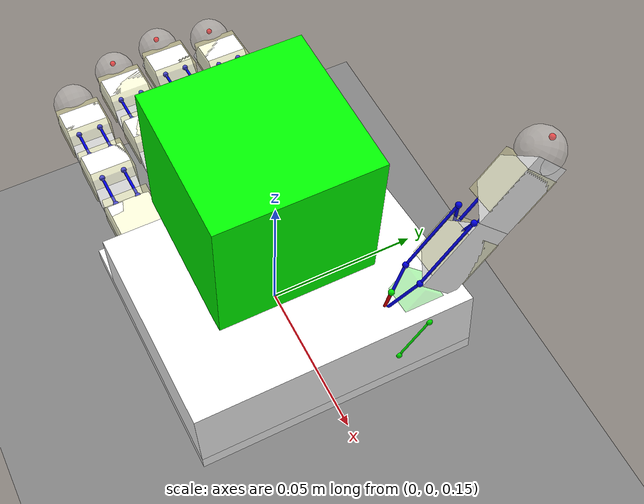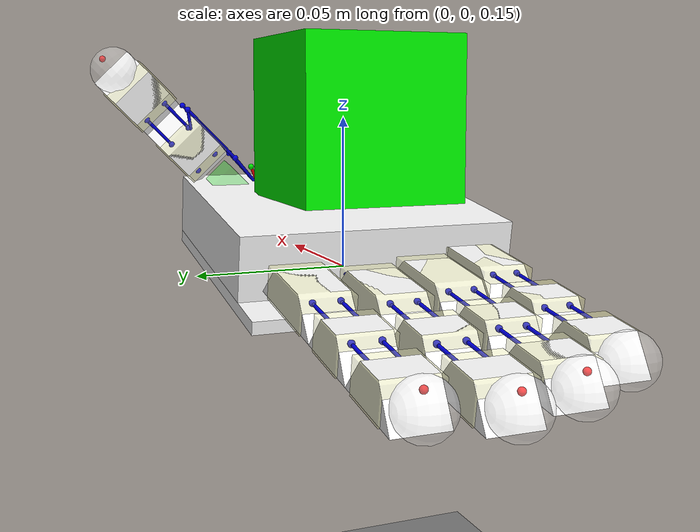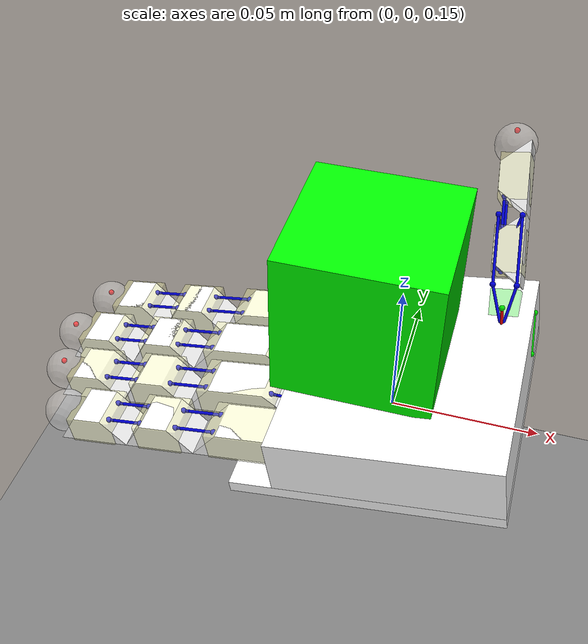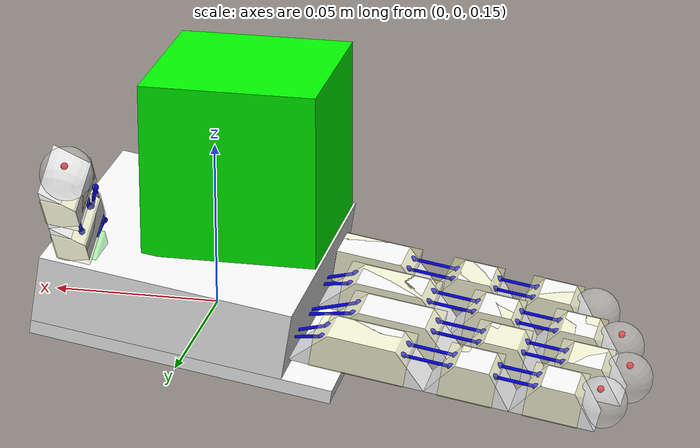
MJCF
<?xml version="1.0" ?>
<!-- Reorient手模型, 5x5 sphere tac sensors -->
<mujoco model="hand">
    <compiler angle="radian"/>
    <option integrator="implicitfast" timestep="0.01"/>
    <option>
        <flag filterparent="disable"/>
    </option>
    <option gravity="0 0 -9.81"/>
    <keyframe>
        <key name="home"
            qpos="0 0 0 0 0 0 0 0 0 0 0 0 0 0 0 0 0 0 0 0 0 0 0 0 0 0"
            qvel="0 0 0 0 0 0 0 0 0 0 0 0 0 0 0 0 0 0 0 0 0 0 0 0 0"
            ctrl="0 0 0 0 0 0 0 0 0 0 0 0"
        />
        <!-- qpos 32 qvel 31 ctrl 18 -->
    </keyframe>
    <default>
        <geom solref="0.001 1" solimp="0.99 0.999 0.0001"/>
        <default class="cube">
            <geom friction=".3 0.05" contype="2" conaffinity="1" condim="3"/>
        </default>
        <default class="hand">
            <geom contype="1" conaffinity="2" type="mesh" density="200" friction="0.7 0.05 0.0002" solref="0.02 1.5" solimp="0.9 0.99 0.001" condim="3" rgba="0 0 1 0"/>
        </default>
        <default class="visual">
            <geom contype="0" conaffinity="0" group="2" density="0"/>
        </default>
    </default>
    <asset>
        <mesh name="thumb_base_link" vertex="0.0 0.0 -0.0075 0.04 0.0 -0.0075 0.03 0.01 -0.0075 0.01 0.01 -0.0075 0.0 0.0 0.0075 0.04 0.0 0.0075 0.03 0.01 0.0075 0.01 0.01 0.0075" normal="-0.7734590803390136 -0.3203772410170408 -0.5469181606780271 0.7734590803390136 -0.3203772410170408 -0.5469181606780271 0.2971085791188998 0.7172835612062476 -0.6302624731310217 -0.2971085791188997 0.7172835612062475 -0.6302624731310217 -0.7734590803390136 -0.32037724101704074 0.5469181606780271 0.7734590803390138 -0.32037724101704057 0.5469181606780271 0.29710857911889976 0.7172835612062477 0.6302624731310216 -0.29710857911889976 0.7172835612062476 0.6302624731310217" face="1 0 3 3 2 1 7 4 5 5 6 7 5 4 1 1 4 0 6 5 2 2 5 1 4 7 0 0 7 3 7 6 3 3 6 2"/>
        <mesh name="thumb_link_1" vertex="0.0 0.0 -0.0075 0.04 0.0 -0.0075 0.03 0.01 -0.0075 0.01 0.01 -0.0075 0.0 0.0 0.0075 0.04 0.0 0.0075 0.03 0.01 0.0075 0.01 0.01 0.0075" normal="-0.7734590803390136 -0.3203772410170408 -0.5469181606780271 0.7734590803390136 -0.3203772410170408 -0.5469181606780271 0.2971085791188998 0.7172835612062476 -0.6302624731310217 -0.2971085791188997 0.7172835612062475 -0.6302624731310217 -0.7734590803390136 -0.32037724101704074 0.5469181606780271 0.7734590803390138 -0.32037724101704057 0.5469181606780271 0.29710857911889976 0.7172835612062477 0.6302624731310216 -0.29710857911889976 0.7172835612062476 0.6302624731310217" face="1 0 3 3 2 1 7 4 5 5 6 7 5 4 1 1 4 0 6 5 2 2 5 1 4 7 0 0 7 3 7 6 3 3 6 2"/>
        <mesh name="thumb_link_2" vertex="0.0 0.0 -0.0075 0.025 0.0 -0.0075 0.0175 0.01 -0.0075 0.007500000000000001 0.01 -0.0075 0.0 0.0 0.0075 0.025 0.0 0.0075 0.0175 0.01 0.0075 0.007500000000000001 0.01 0.0075" normal="-0.7464925414001442 -0.3732462707000721 -0.5508503490444955 0.7464925414001442 -0.3732462707000721 -0.5508503490444956 0.351257248032334 0.702514496064668 -0.618944043128098 -0.351257248032334 0.702514496064668 -0.618944043128098 -0.7464925414001442 -0.3732462707000721 0.5508503490444955 0.7464925414001442 -0.373246270700072 0.5508503490444956 0.351257248032334 0.7025144960646681 0.618944043128098 -0.351257248032334 0.702514496064668 0.618944043128098" face="1 0 3 3 2 1 7 4 5 5 6 7 5 4 1 1 4 0 6 5 2 2 5 1 4 7 0 0 7 3 7 6 3 3 6 2"/>
        <mesh name="thumb_link_3" vertex="0.0 0.0 -0.0075 0.025 0.0 -0.0075 0.0175 0.01 -0.0075 0.007500000000000001 0.01 -0.0075 0.0 0.0 0.0075 0.025 0.0 0.0075 0.0175 0.01 0.0075 0.007500000000000001 0.01 0.0075" normal="-0.7464925414001442 -0.3732462707000721 -0.5508503490444955 0.7464925414001442 -0.3732462707000721 -0.5508503490444956 0.351257248032334 0.702514496064668 -0.618944043128098 -0.351257248032334 0.702514496064668 -0.618944043128098 -0.7464925414001442 -0.3732462707000721 0.5508503490444955 0.7464925414001442 -0.373246270700072 0.5508503490444956 0.351257248032334 0.7025144960646681 0.618944043128098 -0.351257248032334 0.702514496064668 0.618944043128098" face="1 0 3 3 2 1 7 4 5 5 6 7 5 4 1 1 4 0 6 5 2 2 5 1 4 7 0 0 7 3 7 6 3 3 6 2"/>
        <mesh name="index_base_link" vertex="0.0 0.0 -0.0075 0.04 0.0 -0.0075 0.03 0.01 -0.0075 0.01 0.01 -0.0075 0.0 0.0 0.0075 0.04 0.0 0.0075 0.03 0.01 0.0075 0.01 0.01 0.0075" normal="-0.7734590803390136 -0.3203772410170408 -0.5469181606780271 0.7734590803390136 -0.3203772410170408 -0.5469181606780271 0.2971085791188998 0.7172835612062476 -0.6302624731310217 -0.2971085791188997 0.7172835612062475 -0.6302624731310217 -0.7734590803390136 -0.32037724101704074 0.5469181606780271 0.7734590803390138 -0.32037724101704057 0.5469181606780271 0.29710857911889976 0.7172835612062477 0.6302624731310216 -0.29710857911889976 0.7172835612062476 0.6302624731310217" face="1 0 3 3 2 1 7 4 5 5 6 7 5 4 1 1 4 0 6 5 2 2 5 1 4 7 0 0 7 3 7 6 3 3 6 2"/>
        <mesh name="index_link_1" vertex="0.0 0.0 -0.0075 0.04 0.0 -0.0075 0.03 0.01 -0.0075 0.01 0.01 -0.0075 0.0 0.0 0.0075 0.04 0.0 0.0075 0.03 0.01 0.0075 0.01 0.01 0.0075" normal="-0.7734590803390136 -0.3203772410170408 -0.5469181606780271 0.7734590803390136 -0.3203772410170408 -0.5469181606780271 0.2971085791188998 0.7172835612062476 -0.6302624731310217 -0.2971085791188997 0.7172835612062475 -0.6302624731310217 -0.7734590803390136 -0.32037724101704074 0.5469181606780271 0.7734590803390138 -0.32037724101704057 0.5469181606780271 0.29710857911889976 0.7172835612062477 0.6302624731310216 -0.29710857911889976 0.7172835612062476 0.6302624731310217" face="1 0 3 3 2 1 7 4 5 5 6 7 5 4 1 1 4 0 6 5 2 2 5 1 4 7 0 0 7 3 7 6 3 3 6 2"/>
        <mesh name="index_link_2" vertex="0.0 0.0 -0.0075 0.025 0.0 -0.0075 0.0175 0.01 -0.0075 0.007500000000000001 0.01 -0.0075 0.0 0.0 0.0075 0.025 0.0 0.0075 0.0175 0.01 0.0075 0.007500000000000001 0.01 0.0075" normal="-0.7464925414001442 -0.3732462707000721 -0.5508503490444955 0.7464925414001442 -0.3732462707000721 -0.5508503490444956 0.351257248032334 0.702514496064668 -0.618944043128098 -0.351257248032334 0.702514496064668 -0.618944043128098 -0.7464925414001442 -0.3732462707000721 0.5508503490444955 0.7464925414001442 -0.373246270700072 0.5508503490444956 0.351257248032334 0.7025144960646681 0.618944043128098 -0.351257248032334 0.702514496064668 0.618944043128098" face="1 0 3 3 2 1 7 4 5 5 6 7 5 4 1 1 4 0 6 5 2 2 5 1 4 7 0 0 7 3 7 6 3 3 6 2"/>
        <mesh name="index_link_3" vertex="0.0 0.0 -0.0075 0.025 0.0 -0.0075 0.0175 0.01 -0.0075 0.007500000000000001 0.01 -0.0075 0.0 0.0 0.0075 0.025 0.0 0.0075 0.0175 0.01 0.0075 0.007500000000000001 0.01 0.0075" normal="-0.7464925414001442 -0.3732462707000721 -0.5508503490444955 0.7464925414001442 -0.3732462707000721 -0.5508503490444956 0.351257248032334 0.702514496064668 -0.618944043128098 -0.351257248032334 0.702514496064668 -0.618944043128098 -0.7464925414001442 -0.3732462707000721 0.5508503490444955 0.7464925414001442 -0.373246270700072 0.5508503490444956 0.351257248032334 0.7025144960646681 0.618944043128098 -0.351257248032334 0.702514496064668 0.618944043128098" face="1 0 3 3 2 1 7 4 5 5 6 7 5 4 1 1 4 0 6 5 2 2 5 1 4 7 0 0 7 3 7 6 3 3 6 2"/>
        <mesh name="middle_base_link" vertex="0.0 0.0 -0.0075 0.04 0.0 -0.0075 0.03 0.01 -0.0075 0.01 0.01 -0.0075 0.0 0.0 0.0075 0.04 0.0 0.0075 0.03 0.01 0.0075 0.01 0.01 0.0075" normal="-0.7734590803390136 -0.3203772410170408 -0.5469181606780271 0.7734590803390136 -0.3203772410170408 -0.5469181606780271 0.2971085791188998 0.7172835612062476 -0.6302624731310217 -0.2971085791188997 0.7172835612062475 -0.6302624731310217 -0.7734590803390136 -0.32037724101704074 0.5469181606780271 0.7734590803390138 -0.32037724101704057 0.5469181606780271 0.29710857911889976 0.7172835612062477 0.6302624731310216 -0.29710857911889976 0.7172835612062476 0.6302624731310217" face="1 0 3 3 2 1 7 4 5 5 6 7 5 4 1 1 4 0 6 5 2 2 5 1 4 7 0 0 7 3 7 6 3 3 6 2"/>
        <mesh name="middle_link_1" vertex="0.0 0.0 -0.0075 0.04 0.0 -0.0075 0.03 0.01 -0.0075 0.01 0.01 -0.0075 0.0 0.0 0.0075 0.04 0.0 0.0075 0.03 0.01 0.0075 0.01 0.01 0.0075" normal="-0.7734590803390136 -0.3203772410170408 -0.5469181606780271 0.7734590803390136 -0.3203772410170408 -0.5469181606780271 0.2971085791188998 0.7172835612062476 -0.6302624731310217 -0.2971085791188997 0.7172835612062475 -0.6302624731310217 -0.7734590803390136 -0.32037724101704074 0.5469181606780271 0.7734590803390138 -0.32037724101704057 0.5469181606780271 0.29710857911889976 0.7172835612062477 0.6302624731310216 -0.29710857911889976 0.7172835612062476 0.6302624731310217" face="1 0 3 3 2 1 7 4 5 5 6 7 5 4 1 1 4 0 6 5 2 2 5 1 4 7 0 0 7 3 7 6 3 3 6 2"/>
        <mesh name="middle_link_2" vertex="0.0 0.0 -0.0075 0.025 0.0 -0.0075 0.0175 0.01 -0.0075 0.007500000000000001 0.01 -0.0075 0.0 0.0 0.0075 0.025 0.0 0.0075 0.0175 0.01 0.0075 0.007500000000000001 0.01 0.0075" normal="-0.7464925414001442 -0.3732462707000721 -0.5508503490444955 0.7464925414001442 -0.3732462707000721 -0.5508503490444956 0.351257248032334 0.702514496064668 -0.618944043128098 -0.351257248032334 0.702514496064668 -0.618944043128098 -0.7464925414001442 -0.3732462707000721 0.5508503490444955 0.7464925414001442 -0.373246270700072 0.5508503490444956 0.351257248032334 0.7025144960646681 0.618944043128098 -0.351257248032334 0.702514496064668 0.618944043128098" face="1 0 3 3 2 1 7 4 5 5 6 7 5 4 1 1 4 0 6 5 2 2 5 1 4 7 0 0 7 3 7 6 3 3 6 2"/>
        <mesh name="middle_link_3" vertex="0.0 0.0 -0.0075 0.025 0.0 -0.0075 0.0175 0.01 -0.0075 0.007500000000000001 0.01 -0.0075 0.0 0.0 0.0075 0.025 0.0 0.0075 0.0175 0.01 0.0075 0.007500000000000001 0.01 0.0075" normal="-0.7464925414001442 -0.3732462707000721 -0.5508503490444955 0.7464925414001442 -0.3732462707000721 -0.5508503490444956 0.351257248032334 0.702514496064668 -0.618944043128098 -0.351257248032334 0.702514496064668 -0.618944043128098 -0.7464925414001442 -0.3732462707000721 0.5508503490444955 0.7464925414001442 -0.373246270700072 0.5508503490444956 0.351257248032334 0.7025144960646681 0.618944043128098 -0.351257248032334 0.702514496064668 0.618944043128098" face="1 0 3 3 2 1 7 4 5 5 6 7 5 4 1 1 4 0 6 5 2 2 5 1 4 7 0 0 7 3 7 6 3 3 6 2"/>
        <mesh name="ring_base_link" vertex="0.0 0.0 -0.0075 0.04 0.0 -0.0075 0.03 0.01 -0.0075 0.01 0.01 -0.0075 0.0 0.0 0.0075 0.04 0.0 0.0075 0.03 0.01 0.0075 0.01 0.01 0.0075" normal="-0.7734590803390136 -0.3203772410170408 -0.5469181606780271 0.7734590803390136 -0.3203772410170408 -0.5469181606780271 0.2971085791188998 0.7172835612062476 -0.6302624731310217 -0.2971085791188997 0.7172835612062475 -0.6302624731310217 -0.7734590803390136 -0.32037724101704074 0.5469181606780271 0.7734590803390138 -0.32037724101704057 0.5469181606780271 0.29710857911889976 0.7172835612062477 0.6302624731310216 -0.29710857911889976 0.7172835612062476 0.6302624731310217" face="1 0 3 3 2 1 7 4 5 5 6 7 5 4 1 1 4 0 6 5 2 2 5 1 4 7 0 0 7 3 7 6 3 3 6 2"/>
        <mesh name="ring_link_1" vertex="0.0 0.0 -0.0075 0.04 0.0 -0.0075 0.03 0.01 -0.0075 0.01 0.01 -0.0075 0.0 0.0 0.0075 0.04 0.0 0.0075 0.03 0.01 0.0075 0.01 0.01 0.0075" normal="-0.7734590803390136 -0.3203772410170408 -0.5469181606780271 0.7734590803390136 -0.3203772410170408 -0.5469181606780271 0.2971085791188998 0.7172835612062476 -0.6302624731310217 -0.2971085791188997 0.7172835612062475 -0.6302624731310217 -0.7734590803390136 -0.32037724101704074 0.5469181606780271 0.7734590803390138 -0.32037724101704057 0.5469181606780271 0.29710857911889976 0.7172835612062477 0.6302624731310216 -0.29710857911889976 0.7172835612062476 0.6302624731310217" face="1 0 3 3 2 1 7 4 5 5 6 7 5 4 1 1 4 0 6 5 2 2 5 1 4 7 0 0 7 3 7 6 3 3 6 2"/>
        <mesh name="ring_link_2" vertex="0.0 0.0 -0.0075 0.025 0.0 -0.0075 0.0175 0.01 -0.0075 0.007500000000000001 0.01 -0.0075 0.0 0.0 0.0075 0.025 0.0 0.0075 0.0175 0.01 0.0075 0.007500000000000001 0.01 0.0075" normal="-0.7464925414001442 -0.3732462707000721 -0.5508503490444955 0.7464925414001442 -0.3732462707000721 -0.5508503490444956 0.351257248032334 0.702514496064668 -0.618944043128098 -0.351257248032334 0.702514496064668 -0.618944043128098 -0.7464925414001442 -0.3732462707000721 0.5508503490444955 0.7464925414001442 -0.373246270700072 0.5508503490444956 0.351257248032334 0.7025144960646681 0.618944043128098 -0.351257248032334 0.702514496064668 0.618944043128098" face="1 0 3 3 2 1 7 4 5 5 6 7 5 4 1 1 4 0 6 5 2 2 5 1 4 7 0 0 7 3 7 6 3 3 6 2"/>
        <mesh name="ring_link_3" vertex="0.0 0.0 -0.0075 0.025 0.0 -0.0075 0.0175 0.01 -0.0075 0.007500000000000001 0.01 -0.0075 0.0 0.0 0.0075 0.025 0.0 0.0075 0.0175 0.01 0.0075 0.007500000000000001 0.01 0.0075" normal="-0.7464925414001442 -0.3732462707000721 -0.5508503490444955 0.7464925414001442 -0.3732462707000721 -0.5508503490444956 0.351257248032334 0.702514496064668 -0.618944043128098 -0.351257248032334 0.702514496064668 -0.618944043128098 -0.7464925414001442 -0.3732462707000721 0.5508503490444955 0.7464925414001442 -0.373246270700072 0.5508503490444956 0.351257248032334 0.7025144960646681 0.618944043128098 -0.351257248032334 0.702514496064668 0.618944043128098" face="1 0 3 3 2 1 7 4 5 5 6 7 5 4 1 1 4 0 6 5 2 2 5 1 4 7 0 0 7 3 7 6 3 3 6 2"/>
        <mesh name="little_base_link" vertex="0.0 0.0 -0.0075 0.04 0.0 -0.0075 0.03 0.01 -0.0075 0.01 0.01 -0.0075 0.0 0.0 0.0075 0.04 0.0 0.0075 0.03 0.01 0.0075 0.01 0.01 0.0075" normal="-0.7734590803390136 -0.3203772410170408 -0.5469181606780271 0.7734590803390136 -0.3203772410170408 -0.5469181606780271 0.2971085791188998 0.7172835612062476 -0.6302624731310217 -0.2971085791188997 0.7172835612062475 -0.6302624731310217 -0.7734590803390136 -0.32037724101704074 0.5469181606780271 0.7734590803390138 -0.32037724101704057 0.5469181606780271 0.29710857911889976 0.7172835612062477 0.6302624731310216 -0.29710857911889976 0.7172835612062476 0.6302624731310217" face="1 0 3 3 2 1 7 4 5 5 6 7 5 4 1 1 4 0 6 5 2 2 5 1 4 7 0 0 7 3 7 6 3 3 6 2"/>
        <mesh name="little_link_1" vertex="0.0 0.0 -0.0075 0.04 0.0 -0.0075 0.03 0.01 -0.0075 0.01 0.01 -0.0075 0.0 0.0 0.0075 0.04 0.0 0.0075 0.03 0.01 0.0075 0.01 0.01 0.0075" normal="-0.7734590803390136 -0.3203772410170408 -0.5469181606780271 0.7734590803390136 -0.3203772410170408 -0.5469181606780271 0.2971085791188998 0.7172835612062476 -0.6302624731310217 -0.2971085791188997 0.7172835612062475 -0.6302624731310217 -0.7734590803390136 -0.32037724101704074 0.5469181606780271 0.7734590803390138 -0.32037724101704057 0.5469181606780271 0.29710857911889976 0.7172835612062477 0.6302624731310216 -0.29710857911889976 0.7172835612062476 0.6302624731310217" face="1 0 3 3 2 1 7 4 5 5 6 7 5 4 1 1 4 0 6 5 2 2 5 1 4 7 0 0 7 3 7 6 3 3 6 2"/>
        <mesh name="little_link_2" vertex="0.0 0.0 -0.0075 0.025 0.0 -0.0075 0.0175 0.01 -0.0075 0.007500000000000001 0.01 -0.0075 0.0 0.0 0.0075 0.025 0.0 0.0075 0.0175 0.01 0.0075 0.007500000000000001 0.01 0.0075" normal="-0.7464925414001442 -0.3732462707000721 -0.5508503490444955 0.7464925414001442 -0.3732462707000721 -0.5508503490444956 0.351257248032334 0.702514496064668 -0.618944043128098 -0.351257248032334 0.702514496064668 -0.618944043128098 -0.7464925414001442 -0.3732462707000721 0.5508503490444955 0.7464925414001442 -0.373246270700072 0.5508503490444956 0.351257248032334 0.7025144960646681 0.618944043128098 -0.351257248032334 0.702514496064668 0.618944043128098" face="1 0 3 3 2 1 7 4 5 5 6 7 5 4 1 1 4 0 6 5 2 2 5 1 4 7 0 0 7 3 7 6 3 3 6 2"/>
        <mesh name="little_link_3" vertex="0.0 0.0 -0.0075 0.025 0.0 -0.0075 0.0175 0.01 -0.0075 0.007500000000000001 0.01 -0.0075 0.0 0.0 0.0075 0.025 0.0 0.0075 0.0175 0.01 0.0075 0.007500000000000001 0.01 0.0075" normal="-0.7464925414001442 -0.3732462707000721 -0.5508503490444955 0.7464925414001442 -0.3732462707000721 -0.5508503490444956 0.351257248032334 0.702514496064668 -0.618944043128098 -0.351257248032334 0.702514496064668 -0.618944043128098 -0.7464925414001442 -0.3732462707000721 0.5508503490444955 0.7464925414001442 -0.373246270700072 0.5508503490444956 0.351257248032334 0.7025144960646681 0.618944043128098 -0.351257248032334 0.702514496064668 0.618944043128098" face="1 0 3 3 2 1 7 4 5 5 6 7 5 4 1 1 4 0 6 5 2 2 5 1 4 7 0 0 7 3 7 6 3 3 6 2"/>
        <texture type="2d" name="groundplane" builtin="checker" mark="edge" rgb1="1 1 1" rgb2="0 0 0" markrgb="0 0 0" width="300" height="300"/>
        <material name="groundplane" texture="groundplane" texuniform="true" texrepeat="5 5" reflectance="0"/>
    </asset>
    <worldbody>
        <!-- 一些辅助元素 -->
        <geom name="floor" pos="0 0 0" size="0 0 0.01" type="plane" material="groundplane" contype="1" conaffinity="1" friction="1 0.05 0.05" solref="0.001 1" solimp="0.98 0.99 0.001"/>
        <!-- 手的定义 -->
        <body name="palm" pos="0 0 0.15" euler="3.14 3.3 0" childclass="hand">
            <geom type="box" size="0.045 0.045 0.002" rgba="1 1 1 1" density="200"/>
            <geom type="box" size="0.0375 0.045 0.01" pos="-0.0075 0 0.012" rgba="1 1 1 1" density="200"/>
            <!-- 拇指基座 -->
            <body name="thumb_base_link" pos="-0.035 -0.02 0.01" euler="1.57 -1.57 0.0">
                <joint name="thumb_joint_0" type="hinge" axis="0 1 0" range="-0.1 0.1" limited="true" solreflimit=".001 1" solimplimit="0.97 0.99 0.00001 0.1 2" damping="0.2"/>
                <geom conaffinity="0" contype="0" type="sphere" size=".002"/>
                <!-- tendon 连接用site -->
                <site name="thumb_ty_1_1" pos="0 0 0.01" size="0.001" rgba="0 0.9 0 1"/>
                <site name="thumb_ty_2_1" pos="0 0 -0.01" size="0.001" rgba="0 0.9 0 1"/>
                <site name="thumb_tx_1_1" pos="0 0.01 0" size="0.001" rgba="0 0.9 0 1"/>
                <site name="thumb_tx_2_1" pos="0 -0.01 0" size="0.001" rgba="0 0.9 0 1"/>
                <site name="thumb_t12" pos="0 0.01 0" size="0.001" rgba="0 0 0.9 1"/>
                <site name="thumb_t0" pos="-0.01 0.01 0" size="0.001" rgba="0 0 0.9 1"/>
                <!-- 拇指第一节 -->
                <body name="thumb_link_1" pos="0.01 0.01 0.0" euler="0.0 0.0 0.785">
                    <joint name="thumb_joint_1" type="hinge" axis="0 1 0" range="0 0.1" limited="true" solreflimit=".001 1" solimplimit="0.97 0.99 0.00001 0.1 2" damping="0.2"/>
                    <geom conaffinity="0" contype="0" type="sphere" size=".002"/>
                    <geom type="box" size="0.007 0.005 0.005" rgba="0 1 0 0.3" density="200"/>
                    <!-- tendon 连接用site -->
                    <site name="thumb_ty_1_2" pos="0 0 0.01" size="0.001" rgba="0 0.9 0 1"/>
                    <site name="thumb_ty_2_2" pos="0 0 -0.01" size="0.001" rgba="0 0.9 0 1"/>
                    <site name="thumb_tx_1_2" pos="0 0.01 0" size="0.001" rgba="0 0.9 0 1"/>
                    <site name="thumb_tx_2_2" pos="0 -0.01 0" size="0.001" rgba="0 0.9 0 1"/>
                    <site name="thumb_t1_1_1" pos="0.008 0.008 0.004" size="0.001" rgba="0 0 0.9 1"/>
                    <site name="thumb_t2_1_1" pos="0.008 0.008 -0.004" size="0.001" rgba="0 0 0.9 1"/>
                    <site name="thumb_t1_1_2" pos="0.032 0.008 0.004" size="0.001" rgba="0 0 0.9 1"/>
                    <site name="thumb_t2_1_2" pos="0.032 0.008 -0.004" size="0.001" rgba="0 0 0.9 1"/>
                    <!-- 拇指第二节 -->
                    <body name="thumb_link_2" pos="0.008 0 0.005" euler="-1.57 0 0">
                        <joint name="thumb_joint_2" type="hinge" axis="0 0 1" range="0 0.1" limited="true" solreflimit=".001 1" solimplimit="0.97 0.99 0.00001 0.1 2" damping="0.2"/>
                        <geom conaffinity="0" contype="0" type="mesh" rgba="1 1 1 1" mesh="thumb_link_2"/>
                        <geom type="mesh" mesh="thumb_link_2" rgba="0 0 1 1" density="200" class="visual"/>
                        <site name="thumb_t1_2_1" pos="0.006 0.008 0.004" size="0.001" rgba="0 0 0.9 1"/>
                        <site name="thumb_t2_2_1" pos="0.006 0.008 -0.004" size="0.001" rgba="0 0 0.9 1"/>
                        <site name="thumb_t1_2_2" pos="0.019000000000000003 0.008 0.004" size="0.001" rgba="0 0 0.9 1"/>
                        <site name="thumb_t2_2_2" pos="0.019000000000000003 0.008 -0.004" size="0.001" rgba="0 0 0.9 1"/>
                        <geom name="thumb_link_2_collision_box" type="box" pos="0.0125 0.005 0" size="0.008 0.005 0.008" rgba="1 1 .6 .3" density="200" friction="0.7 0.05 0.0002" solref="0.02 1.5" solimp="0.9 0.99 0.001"/>
                        <!-- 拇指第三节 -->
                        <body name="thumb_link_3" pos="0.025 0 0" euler="0 0 0">
                            <joint name="thumb_joint_3" type="hinge" axis="0 0 1" range="0 0.1" limited="true" solreflimit=".001 1" solimplimit="0.97 0.99 0.00001 0.1 2" damping="0.2"/>
                            <geom conaffinity="0" contype="0" type="mesh" rgba="1 1 1 1" mesh="thumb_link_3"/>
                            <geom type="mesh" mesh="thumb_link_3" rgba="1 1 0 1" density="200" class="visual"/>
                            <site name="thumb_t1_3" pos="0.006 0.008 0.004" size="0.001" rgba="0 0 0.9 1"/>
                            <site name="thumb_t2_3" pos="0.006 0.008 -0.004" size="0.001" rgba="0 0 0.9 1"/>
                            <geom name="thumb_link_3_collision_box" type="box" pos="0.0125 0.005 0" size="0.008 0.005 0.008" rgba="1 1 .6 .3" density="200" friction="0.7 0.05 0.0002" solref="0.02 1.5" solimp="0.9 0.99 0.001"/>
                            <geom type="sphere" pos="0.025 0.006 0" size="0.0075" rgba="1 1 1 .3" density="200" friction="0.7 0.05 0.0002" solref="0.02 1.5" solimp="0.9 0.99 0.001"/>
                            <site name="thumb_fingertip" pos="0.03 0.006 0" size="0.001" rgba="0.9 0 0 1"/>
                        </body>
                    </body>
                </body>
            </body>
            <body name="index_base_link" pos="0.015 -0.03 0.005" euler="1.57 0.0 0.0">
                <joint name="index_swing" axis="0 -1 0" range="0 0.5" damping="0.2"/>
                <geom type="sphere" size=".002"/>
                <site name="index_t12" pos="0 0 0" size="0.001" rgba="0 0 0.9 1"/>
                <site name="index_t0" pos="-0.01 0 0" size="0.001" rgba="0 0 0.9 1"/>
                <body name="index_link_1" pos="0.015 0 0">
                    <joint name="index_joint_0" pos="0 0 0" axis="0 0 1" stiffness="0.2" springref="0.0" damping="0.2" range="0 3.14" frictionloss="0.08"/>
                    <geom name="index_link_1_collision_box" type="box" pos="0.02 0.005 0" size="0.014 0.005 0.008" rgba="1 1 .6 .3" density="200" friction="0.7 0.05 0.0002" solref="0.02 1.5" solimp="0.9 0.99 0.001"/>
                    <geom type="mesh" rgba="1 1 1 1" mesh="index_link_1" class="visual"/>
                    <site name="index_t1_1_1" pos="0.008 0.008 0.004" size="0.001" rgba="0 0 0.9 1"/>
                    <site name="index_t2_1_1" pos="0.008 0.008 -0.004" size="0.001" rgba="0 0 0.9 1"/>
                    <site name="index_t1_1_2" pos="0.032 0.008 0.004" size="0.001" rgba="0 0 0.9 1"/>
                    <site name="index_t2_1_2" pos="0.032 0.008 -0.004" size="0.001" rgba="0 0 0.9 1"/>
                    <body name="index_link_2" pos="0.04 0 0">
                        <joint name="index_joint_1" pos="0 0 0" axis="0 0 1" stiffness="0.2" springref="0.0" damping="0.05" range="0 3.14" frictionloss="0.04"/>
                        <geom name="index_link_2_collision_box" type="box" pos="0.012 0.005 0" size="0.008 0.005 0.008" rgba="1 1 .6 .3" density="200" friction="0.7 0.05 0.0002" solref="0.02 1.5" solimp="0.9 0.99 0.001"/>
                        <geom type="mesh" rgba="1 1 1 1" mesh="index_link_2" class="visual"/>
                        <site name="index_t1_2_1" pos="0.006 0.008 0.004" size="0.001" rgba="0 0 0.9 1"/>
                        <site name="index_t2_2_1" pos="0.006 0.008 -0.004" size="0.001" rgba="0 0 0.9 1"/>
                        <site name="index_t1_2_2" pos="0.019 0.008 0.004" size="0.001" rgba="0 0 0.9 1"/>
                        <site name="index_t2_2_2" pos="0.019 0.008 -0.004" size="0.001" rgba="0 0 0.9 1"/>
                        <body name="index_link_3" pos="0.025 0 0">
                            <joint name="index_joint_2" pos="0 0 0" axis="0 0 1" stiffness="0.2" springref="0.0" damping="0.01" range="0 1.3" frictionloss="0.02"/>
                            <geom type="sphere" pos="0.025 0.006 0" size="0.0075" rgba="1 1 1 .3" density="200" friction="0.7 0.05 0.0002" solref="0.02 1.5" solimp="0.9 0.99 0.001"/>
                            <geom type="mesh" rgba="1 1 1 1" mesh="index_link_3" class="visual"/>
                            <site name="index_t1_3" pos="0.006 0.008 0.004" size="0.001" rgba="0 0 0.9 1"/>
                            <site name="index_t2_3" pos="0.006 0.008 -0.004" size="0.001" rgba="0 0 0.9 1"/>
                            <geom name="index_link_3_collision_box" type="box" pos="0.012 0.005 0" size="0.008 0.005 0.008" rgba="1 1 .6 .3" density="200" friction="0.7 0.05 0.0002" solref="0.02 1.5" solimp="0.9 0.99 0.001"/>
                            <site name="index_fingertip" pos="0.024 0.01 0" size="0.001" rgba=".9 0 0 .9"/>
                        </body>
                    </body>
                </body>
            </body>
            <body name="middle_base_link" pos="0.02 -0.01 0.005" euler="1.57 0.0 0.0">
                <site name="middle_t12" pos="0 0 0" size="0.001" rgba="0 0 0.9 1"/>
                <site name="middle_t0" pos="-0.01 0 0" size="0.001" rgba="0 0 0.9 1"/>
                <body name="middle_link_1" pos="0.015 0 0">
                    <joint name="middle_joint_0" pos="0 0 0" axis="0 0 1" stiffness="0.1" springref="0.0" damping="0.2" range="0 3.14"/>
                    <geom type="mesh" rgba="1 1 1 1" mesh="middle_link_1" class="visual"/>
                    <geom name="middle_link_1_collision_box" type="box" pos="0.02 0.005 0" size="0.014 0.005 0.008" rgba="1 1 .6 .3" density="200" friction="0.7 0.05 0.0002" solref="0.02 1.5" solimp="0.9 0.99 0.001"/>
                    <site name="middle_t1_1_1" pos="0.008 0.008 0.004" size="0.001" rgba="0 0 0.9 1"/>
                    <site name="middle_t2_1_1" pos="0.008 0.008 -0.004" size="0.001" rgba="0 0 0.9 1"/>
                    <site name="middle_t1_1_2" pos="0.032 0.008 0.004" size="0.001" rgba="0 0 0.9 1"/>
                    <site name="middle_t2_1_2" pos="0.032 0.008 -0.004" size="0.001" rgba="0 0 0.9 1"/>
                    <body name="middle_link_2" pos="0.04 0 0">
                        <joint name="middle_joint_1" pos="0 0 0" axis="0 0 1" stiffness="0.1" springref="0.0" damping="0.2" range="0 3.14"/>
                        <geom type="mesh" rgba="1 1 1 1" mesh="middle_link_2" class="visual"/>
                        <site name="middle_t1_2_1" pos="0.006 0.008 0.004" size="0.001" rgba="0 0 0.9 1"/>
                        <site name="middle_t2_2_1" pos="0.006 0.008 -0.004" size="0.001" rgba="0 0 0.9 1"/>
                        <site name="middle_t1_2_2" pos="0.019000000000000003 0.008 0.004" size="0.001" rgba="0 0 0.9 1"/>
                        <site name="middle_t2_2_2" pos="0.019000000000000003 0.008 -0.004" size="0.001" rgba="0 0 0.9 1"/>
                        <geom name="middle_link_2_collision_box" type="box" pos="0.012 0.005 0" size="0.008 0.005 0.008" rgba="1 1 .6 .3" density="200" friction="0.7 0.05 0.0002" solref="0.02 1.5" solimp="0.9 0.99 0.001"/>
                        <body name="middle_link_3" pos="0.025 0 0">
                            <joint name="middle_joint_2" pos="0 0 0" axis="0 0 1" stiffness="0.1" springref="0.0" damping="0.2" range="0 1.3"/>
                            <geom type="sphere" pos="0.025 0.006 0" size="0.0075" rgba="1 1 1 .3" density="200" friction="0.7 0.05 0.0002" solref="0.02 1.5" solimp="0.9 0.99 0.001"/>
                            <geom type="mesh" rgba="1 1 1 1" mesh="middle_link_3" class="visual"/>
                            <site name="middle_t1_3" pos="0.006 0.008 0.004" size="0.001" rgba="0 0 0.9 1"/>
                            <site name="middle_t2_3" pos="0.006 0.008 -0.004" size="0.001" rgba="0 0 0.9 1"/>
                            <geom name="middle_link_3_collision_box" type="box" pos="0.012 0.005 0" size="0.008 0.005 0.008" rgba="1 1 .6 .3" density="200" friction="0.7 0.05 0.0002" solref="0.02 1.5" solimp="0.9 0.99 0.001"/>
                            <site name="middle_fingertip" pos="0.025 0.01 0" size="0.001" rgba="1 0 0 1"/>
                        </body>
                    </body>
                </body>
            </body>
            <body name="ring_base_link" pos="0.015 0.01 0.005" euler="1.57 0.0 0.0">
                <joint name="ring_swing" axis="0 1 0" range="0 0.5" damping="0.2"/>
                <geom type="sphere" size=".002"/>
                <site name="ring_t12" pos="0 0 0" size="0.001" rgba="0 0 0.9 1"/>
                <site name="ring_t0" pos="-0.01 0 0" size="0.001" rgba="0 0 0.9 1"/>
                <body name="ring_link_1" pos="0.015 0 0">
                    <joint name="ring_joint_0" pos="0 0 0" axis="0 0 1" stiffness="0.1" springref="0.0" damping="0.2" range="0 3.14"/>
                    <geom type="mesh" rgba="1 1 1 1" mesh="ring_link_1" class="visual"/>
                    <geom name="ring_link_1_collision_box" type="box" pos="0.02 0.005 0" size="0.014 0.005 0.008" rgba="1 1 .6 .3" density="200" friction="0.7 0.05 0.0002" solref="0.02 1.5" solimp="0.9 0.99 0.001"/>
                    <site name="ring_t1_1_1" pos="0.008 0.008 0.004" size="0.001" rgba="0 0 0.9 1"/>
                    <site name="ring_t2_1_1" pos="0.008 0.008 -0.004" size="0.001" rgba="0 0 0.9 1"/>
                    <site name="ring_t1_1_2" pos="0.032 0.008 0.004" size="0.001" rgba="0 0 0.9 1"/>
                    <site name="ring_t2_1_2" pos="0.032 0.008 -0.004" size="0.001" rgba="0 0 0.9 1"/>
                    <body name="ring_link_2" pos="0.04 0 0">
                        <joint name="ring_joint_1" pos="0 0 0" axis="0 0 1" stiffness="0.1" springref="0.0" damping="0.2" range="0 3.14"/>
                        <geom type="mesh" rgba="1 1 1 1" mesh="ring_link_2" class="visual"/>
                        <geom name="ring_link_2_collision_box" type="box" pos="0.012 0.005 0" size="0.008 0.005 0.008" rgba="1 1 .6 .3" density="200" friction="0.7 0.05 0.0002" solref="0.02 1.5" solimp="0.9 0.99 0.001"/>
                        <site name="ring_t1_2_1" pos="0.006 0.008 0.004" size="0.001" rgba="0 0 0.9 1"/>
                        <site name="ring_t2_2_1" pos="0.006 0.008 -0.004" size="0.001" rgba="0 0 0.9 1"/>
                        <site name="ring_t1_2_2" pos="0.019000000000000003 0.008 0.004" size="0.001" rgba="0 0 0.9 1"/>
                        <site name="ring_t2_2_2" pos="0.019000000000000003 0.008 -0.004" size="0.001" rgba="0 0 0.9 1"/>
                        <body name="ring_link_3" pos="0.025 0 0">
                            <joint name="ring_joint_2" pos="0 0 0" axis="0 0 1" stiffness="0.1" springref="0.0" damping="0.2" range="0 1.3"/>
                            <geom type="sphere" pos="0.025 0.006 0" size="0.0075" rgba="1 1 1 .3" density="200" friction="0.7 0.05 0.0002" solref="0.02 1.5" solimp="0.9 0.99 0.001"/>
                            <geom type="mesh" rgba="1 1 1 1" mesh="ring_link_3" class="visual"/>
                            <site name="ring_t1_3" pos="0.006 0.008 0.004" size="0.001" rgba="0 0 0.9 1"/>
                            <site name="ring_t2_3" pos="0.006 0.008 -0.004" size="0.001" rgba="0 0 0.9 1"/>
                            <geom name="ring_link_3_collision_box" type="box" pos="0.012 0.005 0" size="0.008 0.005 0.008" rgba="1 1 .6 .3" density="200" friction="0.7 0.05 0.0002" solref="0.02 1.5" solimp="0.9 0.99 0.001"/>
                            <site name="ring_fingertip" pos="0.025 0.01 0" size="0.001" rgba="1 0 0 1"/>
                        </body>
                    </body>
                </body>
            </body>
            <body name="little_base_link" pos="0.005 0.03 0.005" euler="1.57 0.0 0.0">
                <joint name="little_swing" axis="0 1 0" range="0 0.75" damping="0.2"/>
                <geom type="sphere" size=".002"/>
                <site name="little_t12" pos="0 0 0" size="0.001" rgba="0 0 0.9 1"/>
                <site name="little_t0" pos="-0.01 0 0" size="0.001" rgba="0 0 0.9 1"/>
                <body name="little_link_1" pos="0.015 0 0">
                    <joint name="little_joint_0" pos="0 0 0" axis="0 0 1" stiffness="0.1" springref="0.0" damping="0.2" range="0 3.14"/>
                    <geom type="mesh" rgba="1 1 1 1" mesh="little_link_1" class="visual"/>
                    <geom name="little_link_1_collision_box" type="box" pos="0.02 0.005 0" size="0.014 0.005 0.008" rgba="1 1 .6 .3" density="200" friction="0.7 0.05 0.0002" solref="0.02 1.5" solimp="0.9 0.99 0.001"/>
                    <site name="little_t1_1_1" pos="0.008 0.008 0.004" size="0.001" rgba="0 0 0.9 1"/>
                    <site name="little_t2_1_1" pos="0.008 0.008 -0.004" size="0.001" rgba="0 0 0.9 1"/>
                    <site name="little_t1_1_2" pos="0.032 0.008 0.004" size="0.001" rgba="0 0 0.9 1"/>
                    <site name="little_t2_1_2" pos="0.032 0.008 -0.004" size="0.001" rgba="0 0 0.9 1"/>
                    <body name="little_link_2" pos="0.04 0 0">
                        <joint name="little_joint_1" pos="0 0 0" axis="0 0 1" stiffness="0.1" springref="0.0" damping="0.2" range="0 3.14"/>
                        <geom type="mesh" rgba="1 1 1 1" mesh="little_link_2" class="visual"/>
                        <geom name="little_link_2_collision_box" type="box" pos="0.012 0.005 0" size="0.008 0.005 0.008" rgba="1 1 .6 .3" density="200" friction="0.7 0.05 0.0002" solref="0.02 1.5" solimp="0.9 0.99 0.001"/>
                        <site name="little_t1_2_1" pos="0.006 0.008 0.004" size="0.001" rgba="0 0 0.9 1"/>
                        <site name="little_t2_2_1" pos="0.006 0.008 -0.004" size="0.001" rgba="0 0 0.9 1"/>
                        <site name="little_t1_2_2" pos="0.019000000000000003 0.008 0.004" size="0.001" rgba="0 0 0.9 1"/>
                        <site name="little_t2_2_2" pos="0.019000000000000003 0.008 -0.004" size="0.001" rgba="0 0 0.9 1"/>
                        <body name="little_link_3" pos="0.025 0 0">
                            <joint name="little_joint_2" pos="0 0 0" axis="0 0 1" stiffness="0.1" springref="0.0" damping="0.2" range="0 1.3"/>
                            <geom type="sphere" pos="0.025 0.006 0" size="0.0075" rgba="1 1 1 .3" density="200" friction="0.7 0.05 0.0002" solref="0.02 1.5" solimp="0.9 0.99 0.001"/>
                            <site name="little_fingertip" pos="0.025 0.01 0" size="0.001" rgba="1 0 0 .3"/>
                            <geom type="mesh" rgba="1 1 1 1" mesh="little_link_3" class="visual"/>
                            <geom name="little_link_3_collision_box" type="box" pos="0.012 0.005 0" size="0.008 0.005 0.008" rgba="1 1 .6 .3" density="200" friction="0.7 0.05 0.0002" solref="0.02 1.5" solimp="0.9 0.99 0.001"/>
                            <site name="little_t1_3" pos="0.006 0.008 0.004" size="0.001" rgba="0 0 0.9 1"/>
                            <site name="little_t2_3" pos="0.006 0.008 -0.004" size="0.001" rgba="0 0 0.9 1"/>
                        </body>
                    </body>
                </body>
            </body>
        </body>
        <!-- cube 的定义 -->
        <body name="cube" pos="-0.01 0.0 0.2" quat="1 0 0 0" childclass="cube">
            <freejoint name="cube_freejoint"/>
            <geom name="cube" type="box" size=".026 .026 .026" mass=".108" group="0" rgba="0 1 0 1"/>
            <site name="cube_center" pos="0 0 0" group="4"/>
        </body>
    </worldbody>
    <tendon>
        <spatial name="thumb_tendon_x1" width=".0005" rgba=".9 .0 .0 1">
            <site site="thumb_tx_1_1"/>
            <site site="thumb_tx_1_2"/>
        </spatial>
        <spatial name="thumb_tendon_x2" width=".0005" rgba=".9 .0 .0 1">
            <site site="thumb_tx_2_2"/>
            <site site="thumb_tx_2_1"/>
        </spatial>
        <spatial name="thumb_tendon_y1" width=".0005" rgba="0 .9 .0 1">
            <site site="thumb_ty_1_1"/>
            <site site="thumb_ty_1_2"/>
        </spatial>
        <spatial name="thumb_tendon_y2" width=".0005" rgba="0 .9 .0 1">
            <site site="thumb_ty_2_2"/>
            <site site="thumb_ty_2_1"/>
        </spatial>
        <spatial name="thumb_tendon" width=".0005" rgba="0 0 .9 1" solreflimit=".001 1" solimplimit="0.99 0.999 0.00001 0.1 2">
            <site site="thumb_t0"/>
            <site site="thumb_t12"/>
            <pulley divisor="2"/>
            <site site="thumb_t12"/>
            <site site="thumb_t1_1_1"/>
            <site site="thumb_t1_1_2"/>
            <site site="thumb_t1_2_1"/>
            <site site="thumb_t1_2_2"/>
            <site site="thumb_t1_3"/>
            <pulley divisor="2"/>
            <site site="thumb_t12"/>
            <site site="thumb_t2_1_1"/>
            <site site="thumb_t2_1_2"/>
            <site site="thumb_t2_2_1"/>
            <site site="thumb_t2_2_2"/>
            <site site="thumb_t2_3"/>
        </spatial>
        <spatial name="index_tendon" width=".0005" rgba="0 0 .9 1" solreflimit=".001 1" solimplimit="0.99 0.999 0.00001 0.1 2">
            <site site="index_t0"/>
            <site site="index_t12"/>
            <pulley divisor="2"/>
            <site site="index_t12"/>
            <site site="index_t1_1_1"/>
            <site site="index_t1_1_2"/>
            <site site="index_t1_2_1"/>
            <site site="index_t1_2_2"/>
            <site site="index_t1_3"/>
            <pulley divisor="2"/>
            <site site="index_t12"/>
            <site site="index_t2_1_1"/>
            <site site="index_t2_1_2"/>
            <site site="index_t2_2_1"/>
            <site site="index_t2_2_2"/>
            <site site="index_t2_3"/>
        </spatial>
        <spatial name="middle_tendon" width=".0005" rgba="0 0 .9 1" solreflimit=".001 1" solimplimit="0.99 0.999 0.00001 0.1 2">
            <site site="middle_t0"/>
            <site site="middle_t12"/>
            <pulley divisor="2"/>
            <site site="middle_t12"/>
            <site site="middle_t1_1_1"/>
            <site site="middle_t1_1_2"/>
            <site site="middle_t1_2_1"/>
            <site site="middle_t1_2_2"/>
            <site site="middle_t1_3"/>
            <pulley divisor="2"/>
            <site site="middle_t12"/>
            <site site="middle_t2_1_1"/>
            <site site="middle_t2_1_2"/>
            <site site="middle_t2_2_1"/>
            <site site="middle_t2_2_2"/>
            <site site="middle_t2_3"/>
        </spatial>
        <spatial name="ring_tendon" width=".0005" rgba="0 0 .9 1" solreflimit=".001 1" solimplimit="0.99 0.999 0.00001 0.1 2">
            <site site="ring_t0"/>
            <site site="ring_t12"/>
            <pulley divisor="2"/>
            <site site="ring_t12"/>
            <site site="ring_t1_1_1"/>
            <site site="ring_t1_1_2"/>
            <site site="ring_t1_2_1"/>
            <site site="ring_t1_2_2"/>
            <site site="ring_t1_3"/>
            <pulley divisor="2"/>
            <site site="ring_t12"/>
            <site site="ring_t2_1_1"/>
            <site site="ring_t2_1_2"/>
            <site site="ring_t2_2_1"/>
            <site site="ring_t2_2_2"/>
            <site site="ring_t2_3"/>
        </spatial>
        <spatial name="little_tendon" width=".0005" rgba="0 0 .9 1" solreflimit=".001 1" solimplimit="0.99 0.999 0.00001 0.1 2">
            <site site="little_t0"/>
            <site site="little_t12"/>
            <pulley divisor="2"/>
            <site site="little_t12"/>
            <site site="little_t1_1_1"/>
            <site site="little_t1_1_2"/>
            <site site="little_t1_2_1"/>
            <site site="little_t1_2_2"/>
            <site site="little_t1_3"/>
            <pulley divisor="2"/>
            <site site="little_t12"/>
            <site site="little_t2_1_1"/>
            <site site="little_t2_1_2"/>
            <site site="little_t2_2_1"/>
            <site site="little_t2_2_2"/>
            <site site="little_t2_3"/>
        </spatial>
    </tendon>
    <actuator>
        <motor name="thumb_tendon" tendon="thumb_tendon" ctrllimited="true" ctrlrange="-20 0"/>
        <position name="thumb_tendon_x1" tendon="thumb_tendon_x1" forcerange="-50 0" forcelimited="true" ctrllimited="true" ctrlrange=" 0 0.03" kp="3" dampratio="1.5"/>
        <position name="thumb_tendon_x2" tendon="thumb_tendon_x2" forcerange="-50 0" forcelimited="true" ctrllimited="true" ctrlrange=" 0 0.03" kp="3" dampratio="1.5"/>
        <position name="thumb_tendon_y1" tendon="thumb_tendon_y1" forcerange="-50 0" forcelimited="true" ctrllimited="true" ctrlrange=" 0 0.03" kp="3" dampratio="1.5"/>
        <position name="thumb_tendon_y2" tendon="thumb_tendon_y2" forcerange="-50 0" forcelimited="true" ctrllimited="true" ctrlrange=" 0 0.03" kp="3" dampratio="1.5"/>
        <motor name="index_tendon" tendon="index_tendon" ctrllimited="true" ctrlrange="-20 0"/>
        <position name="index_swing" joint="index_swing" ctrllimited="true" ctrlrange="0 0.5" kp="3" dampratio="2"/>
        <motor name="middle_tendon" tendon="middle_tendon" ctrllimited="true" ctrlrange="-20 0"/>
        <motor name="ring_tendon" tendon="ring_tendon" ctrllimited="true" ctrlrange="-20 0"/>
        <position name="ring_swing" joint="ring_swing" ctrllimited="true" ctrlrange="0 0.5" kp="3" dampratio="2"/>
        <motor name="little_tendon" tendon="little_tendon" ctrllimited="true" ctrlrange="-20 0"/>
        <position name="little_swing" joint="little_swing" ctrllimited="true" ctrlrange="0 0.75" kp="3" dampratio="2"/>
    </actuator>
    <sensor>
        <!-- cube sensor -->
        <framepos name="cube_pos" objtype="body" objname="cube"/>
        <framequat name="cube_quat" objtype="body" objname="cube"/>
        <framelinvel name="cube_linvel" objtype="body" objname="cube"/>
        <frameangvel name="cube_angvel" objtype="body" objname="cube"/>
        <frameangacc name="cube_angacc" objtype="body" objname="cube"/>
        <framezaxis name="cube_upvector" objtype="body" objname="cube"/>
        <!-- palm pos sensor -->
        <framepos name="palm_pos" objtype="body" objname="palm"/>
        <!-- fingertip pos sensor -->
        <framepos name="thumb_fingertip_pos" objtype="site" objname="thumb_fingertip"/>
        <framepos name="index_fingertip_pos" objtype="site" objname="index_fingertip"/>
        <framepos name="middle_fingertip_pos" objtype="site" objname="middle_fingertip"/>
        <framepos name="ring_fingertip_pos" objtype="site" objname="ring_fingertip"/>
        <framepos name="little_fingertip_pos" objtype="site" objname="little_fingertip"/>
    </sensor>
</mujoco>
